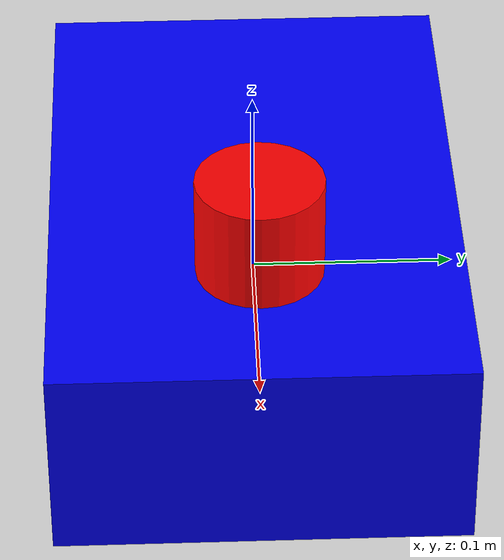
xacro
<?xml version="1.0"?>
<robot xmlns:xacro="http://www.ros.org/wiki/xacro" name="rb300">

  <!-- Base link -->
  <link name="base_link">
    <visual>
      <origin xyz="0 0 0" rpy="0 0 0"/>
      <geometry>
        <box size="0.3 0.2 0.1"/>
      </geometry>
      <material name="blue">
        <color rgba="0.0 0.0 1.0 1.0"/>
      </material>
    </visual>
  </link>

  <!-- Left wheel -->
  <link name="left_wheel_link">
    <visual>
      <origin xyz="0 0 0" rpy="1.5708 0 0"/>
      <geometry>
        <cylinder radius="0.0473" length="0.02"/>
      </geometry>
      <material name="black">
        <color rgba="0.0 0.0 0.0 1.0"/>
      </material>
    </visual>
  </link>

  <joint name="left_wheel_joint" type="continuous">
    <parent link="base_link"/>
    <child link="left_wheel_link"/>
    <origin xyz="0.0 0.0898 0.0" rpy="0 0 0"/>
    <axis xyz="0 1 0"/>
  </joint>

  <!-- Right wheel -->
  <link name="right_wheel_link">
    <visual>
      <origin xyz="0 0 0" rpy="1.5708 0 0"/>
      <geometry>
        <cylinder radius="0.0473" length="0.02"/>
      </geometry>
      <material name="black">
        <color rgba="0.0 0.0 0.0 1.0"/>
      </material>
    </visual>
  </link>

  <joint name="right_wheel_joint" type="continuous">
    <parent link="base_link"/>
    <child link="right_wheel_link"/>
    <origin xyz="0.0 -0.0898 0.0" rpy="0 0 0"/>
    <axis xyz="0 1 0"/>
  </joint>

  <!-- Laser link -->
  <link name="laser">
    <visual>
      <origin xyz="0 0 0" rpy="0 0 0"/>
      <geometry>
        <cylinder radius="0.03" length="0.05"/>
      </geometry>
      <material name="red">
        <color rgba="1.0 0.0 0.0 1.0"/>
      </material>
    </visual>
  </link>

  <joint name="laser_joint" type="fixed">
    <parent link="base_link"/>
    <child link="laser"/>
    <origin xyz="0.1 0.0 0.1" rpy="0 0 0"/>
  </joint>

</robot>
